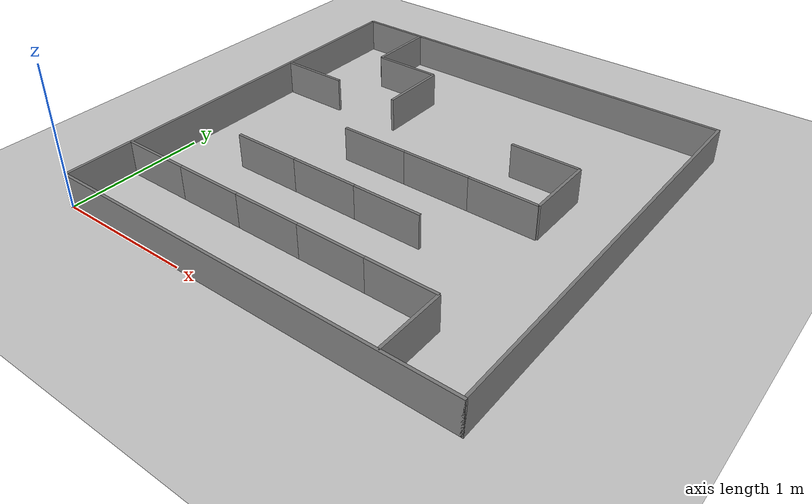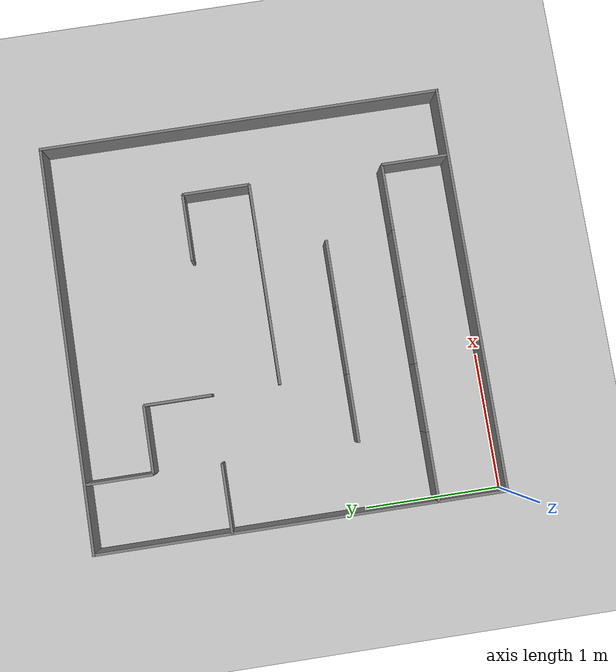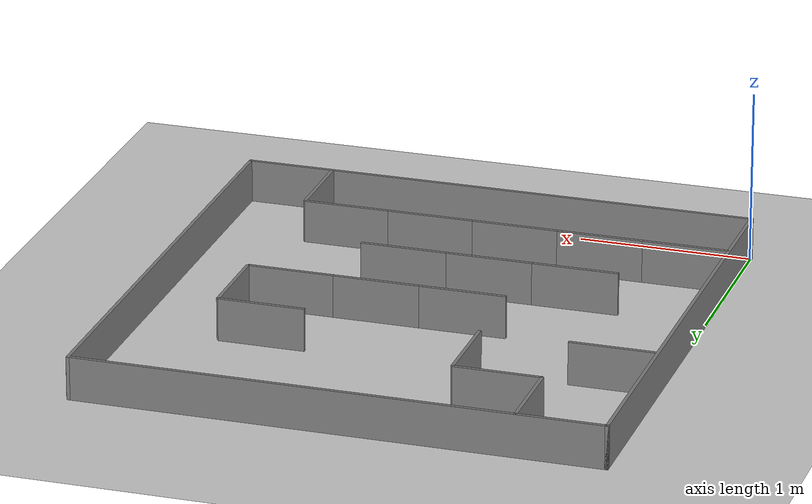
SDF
<?xml version="1.0" ?>
<sdf version="1.6">
  <world name="turtlebot3_maze">

    <!-- Physics settings -->
    <physics name="1ms" type="ignored">
      <max_step_size>0.001</max_step_size>
      <real_time_factor>1.0</real_time_factor>
    </physics>

    <!-- Plugin for Gazebo -->
    <plugin filename="gz-sim-physics-system" name="gz::sim::systems::Physics"/>
    <plugin filename="gz-sim-user-commands-system" name="gz::sim::systems::UserCommands"/>
    <plugin filename="gz-sim-scene-broadcaster-system" name="gz::sim::systems::SceneBroadcaster"/>
    <plugin filename="gz-sim-sensors-system" name="gz::sim::systems::Sensors">
      <render_engine>ogre2</render_engine>
    </plugin>

    <!-- Lighting -->
    <light type="directional" name="sun">
      <cast_shadows>true</cast_shadows>
      <pose>0 0 10 0 0 0</pose>
      <diffuse>0.8 0.8 0.8 1</diffuse>
      <specular>0.2 0.2 0.2 1</specular>
      <attenuation>
        <range>1000</range>
        <constant>0.9</constant>
        <linear>0.01</linear>
        <quadratic>0.001</quadratic>
      </attenuation>
      <direction>-0.5 0.1 -0.9</direction>
    </light>

    <!-- Ground plane -->
    <model name="ground_plane">
      <static>true</static>
      <link name="link">
        <collision name="collision">
          <geometry>
            <plane>
              <normal>0 0 1</normal>
              <size>100 100</size>
            </plane>
          </geometry>
        </collision>
        <visual name="visual">
          <geometry>
            <plane>
              <normal>0 0 1</normal>
              <size>100 100</size>
            </plane>
          </geometry>
          <material>
            <ambient>0.8 0.8 0.8 1</ambient>
            <diffuse>0.8 0.8 0.8 1</diffuse>
            <specular>0.8 0.8 0.8 1</specular>
          </material>
        </visual>
      </link>
    </model>

    <!-- Maze walls based on provided image -->
    <!-- Wall parameters: height=0.25m, thickness=0.02m -->
    <!-- Grid: 6x6 cells, each cell is 0.5m x 0.5m -->

    <!-- Outer boundary walls -->
    <!-- Top wall -->
    <model name="wall_outer_top">
      <static>true</static>
      <pose>1.5 3.0 0.125 0 0 0</pose>
      <link name="link">
        <collision name="collision">
          <geometry>
            <box><size>3.02 0.02 0.25</size></box>
          </geometry>
        </collision>
        <visual name="visual">
          <geometry>
            <box><size>3.02 0.02 0.25</size></box>
          </geometry>
          <material>
            <ambient>0.2 0.2 0.2 1</ambient>
            <diffuse>0.5 0.5 0.5 1</diffuse>
          </material>
        </visual>
      </link>
    </model>

    <!-- Bottom wall -->
    <model name="wall_outer_bottom">
      <static>true</static>
      <pose>1.5 0.0 0.125 0 0 0</pose>
      <link name="link">
        <collision name="collision">
          <geometry>
            <box><size>3.02 0.02 0.25</size></box>
          </geometry>
        </collision>
        <visual name="visual">
          <geometry>
            <box><size>3.02 0.02 0.25</size></box>
          </geometry>
          <material>
            <ambient>0.2 0.2 0.2 1</ambient>
            <diffuse>0.5 0.5 0.5 1</diffuse>
          </material>
        </visual>
      </link>
    </model>

    <!-- Left wall -->
    <model name="wall_outer_left">
      <static>true</static>
      <pose>0.0 1.5 0.125 0 0 0</pose>
      <link name="link">
        <collision name="collision">
          <geometry>
            <box><size>0.02 3.02 0.25</size></box>
          </geometry>
        </collision>
        <visual name="visual">
          <geometry>
            <box><size>0.02 3.02 0.25</size></box>
          </geometry>
          <material>
            <ambient>0.2 0.2 0.2 1</ambient>
            <diffuse>0.5 0.5 0.5 1</diffuse>
          </material>
        </visual>
      </link>
    </model>

    <!-- Right wall -->
    <model name="wall_outer_right">
      <static>true</static>
      <pose>3.0 1.5 0.125 0 0 0</pose>
      <link name="link">
        <collision name="collision">
          <geometry>
            <box><size>0.02 3.02 0.25</size></box>
          </geometry>
        </collision>
        <visual name="visual">
          <geometry>
            <box><size>0.02 3.02 0.25</size></box>
          </geometry>
          <material>
            <ambient>0.2 0.2 0.2 1</ambient>
            <diffuse>0.5 0.5 0.5 1</diffuse>
          </material>
        </visual>
      </link>
    </model>

    <!-- Internal walls based on maze image -->
    <!-- Row 0 (top) internal walls -->
    <model name="wall_h_0_1">
      <static>true</static>
      <pose>0.75 2.5 0.125 0 0 0</pose>
      <link name="link">
        <collision name="collision">
          <geometry>
            <box><size>0.5 0.02 0.25</size></box>
          </geometry>
        </collision>
        <visual name="visual">
          <geometry>
            <box><size>0.5 0.02 0.25</size></box>
          </geometry>
          <material>
            <ambient>0.2 0.2 0.2 1</ambient>
            <diffuse>0.5 0.5 0.5 1</diffuse>
          </material>
        </visual>
      </link>
    </model>

    <!-- Vertical wall between cells (0,1) and (1,1) -->
    <model name="wall_v_0_1">
      <static>true</static>
      <pose>0.5 2.75 0.125 0 0 0</pose>
      <link name="link">
        <collision name="collision">
          <geometry>
            <box><size>0.02 0.5 0.25</size></box>
          </geometry>
        </collision>
        <visual name="visual">
          <geometry>
            <box><size>0.02 0.5 0.25</size></box>
          </geometry>
          <material>
            <ambient>0.2 0.2 0.2 1</ambient>
            <diffuse>0.5 0.5 0.5 1</diffuse>
          </material>
        </visual>
      </link>
    </model>

    <!-- Row 1 horizontal walls -->
    <model name="wall_h_1_0">
      <static>true</static>
      <pose>0.25 2.0 0.125 0 0 0</pose>
      <link name="link">
        <collision name="collision">
          <geometry>
            <box><size>0.5 0.02 0.25</size></box>
          </geometry>
        </collision>
        <visual name="visual">
          <geometry>
            <box><size>0.5 0.02 0.25</size></box>
          </geometry>
          <material>
            <ambient>0.2 0.2 0.2 1</ambient>
            <diffuse>0.5 0.5 0.5 1</diffuse>
          </material>
        </visual>
      </link>
    </model>

    <model name="wall_h_1_3">
      <static>true</static>
      <pose>2.25 2.0 0.125 0 0 0</pose>
      <link name="link">
        <collision name="collision">
          <geometry>
            <box><size>0.5 0.02 0.25</size></box>
          </geometry>
        </collision>
        <visual name="visual">
          <geometry>
            <box><size>0.5 0.02 0.25</size></box>
          </geometry>
          <material>
            <ambient>0.2 0.2 0.2 1</ambient>
            <diffuse>0.5 0.5 0.5 1</diffuse>
          </material>
        </visual>
      </link>
    </model>

    <!-- Row 2 horizontal walls -->
    <model name="wall_h_2_2">
      <static>true</static>
      <pose>1.25 1.5 0.125 0 0 0</pose>
      <link name="link">
        <collision name="collision">
          <geometry>
            <box><size>0.5 0.02 0.25</size></box>
          </geometry>
        </collision>
        <visual name="visual">
          <geometry>
            <box><size>0.5 0.02 0.25</size></box>
          </geometry>
          <material>
            <ambient>0.2 0.2 0.2 1</ambient>
            <diffuse>0.5 0.5 0.5 1</diffuse>
          </material>
        </visual>
      </link>
    </model>

    <model name="wall_h_2_3">
      <static>true</static>
      <pose>1.75 1.5 0.125 0 0 0</pose>
      <link name="link">
        <collision name="collision">
          <geometry>
            <box><size>0.5 0.02 0.25</size></box>
          </geometry>
        </collision>
        <visual name="visual">
          <geometry>
            <box><size>0.5 0.02 0.25</size></box>
          </geometry>
          <material>
            <ambient>0.2 0.2 0.2 1</ambient>
            <diffuse>0.5 0.5 0.5 1</diffuse>
          </material>
        </visual>
      </link>
    </model>

    <model name="wall_h_2_4">
      <static>true</static>
      <pose>2.25 1.5 0.125 0 0 0</pose>
      <link name="link">
        <collision name="collision">
          <geometry>
            <box><size>0.5 0.02 0.25</size></box>
          </geometry>
        </collision>
        <visual name="visual">
          <geometry>
            <box><size>0.5 0.02 0.25</size></box>
          </geometry>
          <material>
            <ambient>0.2 0.2 0.2 1</ambient>
            <diffuse>0.5 0.5 0.5 1</diffuse>
          </material>
        </visual>
      </link>
    </model>

    <!-- Row 3 horizontal wall -->
    <model name="wall_h_3_1">
      <static>true</static>
      <pose>0.75 1.0 0.125 0 0 0</pose>
      <link name="link">
        <collision name="collision">
          <geometry>
            <box><size>0.5 0.02 0.25</size></box>
          </geometry>
        </collision>
        <visual name="visual">
          <geometry>
            <box><size>0.5 0.02 0.25</size></box>
          </geometry>
          <material>
            <ambient>0.2 0.2 0.2 1</ambient>
            <diffuse>0.5 0.5 0.5 1</diffuse>
          </material>
        </visual>
      </link>
    </model>

    <model name="wall_h_3_2">
      <static>true</static>
      <pose>1.25 1.0 0.125 0 0 0</pose>
      <link name="link">
        <collision name="collision">
          <geometry>
            <box><size>0.5 0.02 0.25</size></box>
          </geometry>
        </collision>
        <visual name="visual">
          <geometry>
            <box><size>0.5 0.02 0.25</size></box>
          </geometry>
          <material>
            <ambient>0.2 0.2 0.2 1</ambient>
            <diffuse>0.5 0.5 0.5 1</diffuse>
          </material>
        </visual>
      </link>
    </model>

    <model name="wall_h_3_3">
      <static>true</static>
      <pose>1.75 1.0 0.125 0 0 0</pose>
      <link name="link">
        <collision name="collision">
          <geometry>
            <box><size>0.5 0.02 0.25</size></box>
          </geometry>
        </collision>
        <visual name="visual">
          <geometry>
            <box><size>0.5 0.02 0.25</size></box>
          </geometry>
          <material>
            <ambient>0.2 0.2 0.2 1</ambient>
            <diffuse>0.5 0.5 0.5 1</diffuse>
          </material>
        </visual>
      </link>
    </model>

    <!-- Row 4 horizontal walls -->
    <model name="wall_h_4_0">
      <static>true</static>
      <pose>0.25 0.5 0.125 0 0 0</pose>
      <link name="link">
        <collision name="collision">
          <geometry>
            <box><size>0.5 0.02 0.25</size></box>
          </geometry>
        </collision>
        <visual name="visual">
          <geometry>
            <box><size>0.5 0.02 0.25</size></box>
          </geometry>
          <material>
            <ambient>0.2 0.2 0.2 1</ambient>
            <diffuse>0.5 0.5 0.5 1</diffuse>
          </material>
        </visual>
      </link>
    </model>

    <model name="wall_h_4_1">
      <static>true</static>
      <pose>0.75 0.5 0.125 0 0 0</pose>
      <link name="link">
        <collision name="collision">
          <geometry>
            <box><size>0.5 0.02 0.25</size></box>
          </geometry>
        </collision>
        <visual name="visual">
          <geometry>
            <box><size>0.5 0.02 0.25</size></box>
          </geometry>
          <material>
            <ambient>0.2 0.2 0.2 1</ambient>
            <diffuse>0.5 0.5 0.5 1</diffuse>
          </material>
        </visual>
      </link>
    </model>

    <model name="wall_h_4_2">
      <static>true</static>
      <pose>1.25 0.5 0.125 0 0 0</pose>
      <link name="link">
        <collision name="collision">
          <geometry>
            <box><size>0.5 0.02 0.25</size></box>
          </geometry>
        </collision>
        <visual name="visual">
          <geometry>
            <box><size>0.5 0.02 0.25</size></box>
          </geometry>
          <material>
            <ambient>0.2 0.2 0.2 1</ambient>
            <diffuse>0.5 0.5 0.5 1</diffuse>
          </material>
        </visual>
      </link>
    </model>

    <model name="wall_h_4_3">
      <static>true</static>
      <pose>1.75 0.5 0.125 0 0 0</pose>
      <link name="link">
        <collision name="collision">
          <geometry>
            <box><size>0.5 0.02 0.25</size></box>
          </geometry>
        </collision>
        <visual name="visual">
          <geometry>
            <box><size>0.5 0.02 0.25</size></box>
          </geometry>
          <material>
            <ambient>0.2 0.2 0.2 1</ambient>
            <diffuse>0.5 0.5 0.5 1</diffuse>
          </material>
        </visual>
      </link>
    </model>

    <model name="wall_h_4_4">
      <static>true</static>
      <pose>2.25 0.5 0.125 0 0 0</pose>
      <link name="link">
        <collision name="collision">
          <geometry>
            <box><size>0.5 0.02 0.25</size></box>
          </geometry>
        </collision>
        <visual name="visual">
          <geometry>
            <box><size>0.5 0.02 0.25</size></box>
          </geometry>
          <material>
            <ambient>0.2 0.2 0.2 1</ambient>
            <diffuse>0.5 0.5 0.5 1</diffuse>
          </material>
        </visual>
      </link>
    </model>

    <!-- Vertical walls -->
    <model name="wall_v_2_1">
      <static>true</static>
      <pose>1.0 2.25 0.125 0 0 0</pose>
      <link name="link">
        <collision name="collision">
          <geometry>
            <box><size>0.02 0.5 0.25</size></box>
          </geometry>
        </collision>
        <visual name="visual">
          <geometry>
            <box><size>0.02 0.5 0.25</size></box>
          </geometry>
          <material>
            <ambient>0.2 0.2 0.2 1</ambient>
            <diffuse>0.5 0.5 0.5 1</diffuse>
          </material>
        </visual>
      </link>
    </model>

    <model name="wall_v_2_5">
      <static>true</static>
      <pose>2.5 1.75 0.125 0 0 0</pose>
      <link name="link">
        <collision name="collision">
          <geometry>
            <box><size>0.02 0.5 0.25</size></box>
          </geometry>
        </collision>
        <visual name="visual">
          <geometry>
            <box><size>0.02 0.5 0.25</size></box>
          </geometry>
          <material>
            <ambient>0.2 0.2 0.2 1</ambient>
            <diffuse>0.5 0.5 0.5 1</diffuse>
          </material>
        </visual>
      </link>
    </model>

    <model name="wall_v_5_2">
      <static>true</static>
      <pose>2.5 0.25 0.125 0 0 0</pose>
      <link name="link">
        <collision name="collision">
          <geometry>
            <box><size>0.02 0.5 0.25</size></box>
          </geometry>
        </collision>
        <visual name="visual">
          <geometry>
            <box><size>0.02 0.5 0.25</size></box>
          </geometry>
          <material>
            <ambient>0.2 0.2 0.2 1</ambient>
            <diffuse>0.5 0.5 0.5 1</diffuse>
          </material>
        </visual>
      </link>
    </model>

  </world>
</sdf>
